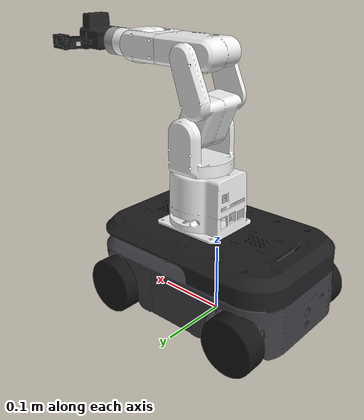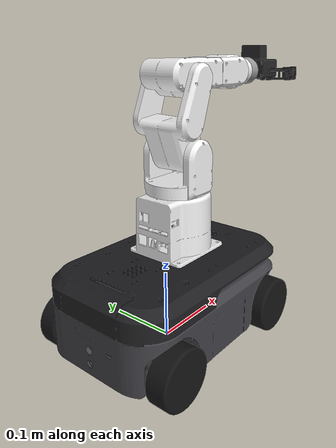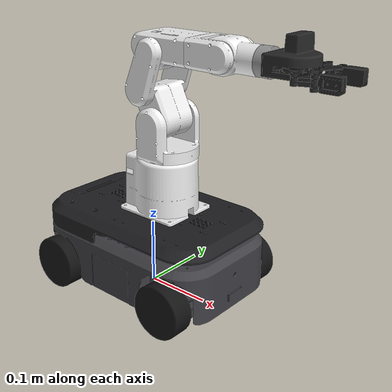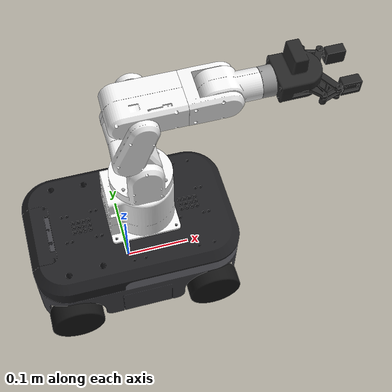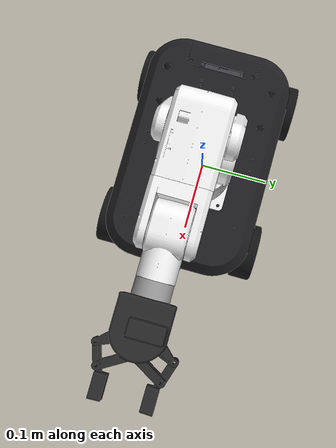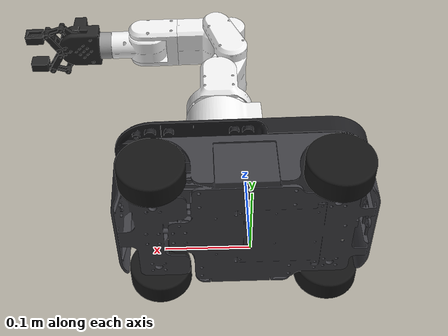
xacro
<?xml version="1.0"?>
<robot xmlns:xacro="http://ros.org/wiki/xacro" name="myagv_mecharm">

  <xacro:arg name="namespace" default=""/>
  <xacro:property name="namespace" value="$(arg namespace)"/>

  <xacro:arg name="simulation_controllers" default=""/>
  <xacro:property name="simulation_controllers" value="$(arg simulation_controllers)"/>

  <xacro:include filename="$(find custom_robots)/models/myagv_mecharm/myagv_mecharm_common.urdf.xacro"/>

  <xacro:myagv_mecharm namespace="${namespace}" simulation_controllers="${simulation_controllers}"/>

</robot>

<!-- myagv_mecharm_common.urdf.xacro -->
<robot xmlns:xacro="http://ros.org/wiki/xacro">

  <xacro:property name="mesh_dir" value="file://$(find custom_robots)/models/myagv_mecharm/meshes"/>
  <xacro:property name="wheel_radius" value="0.04"/>
  <xacro:property name="plate_top" value="0.1322"/>
  <xacro:property name="arm_x" value="0.03"/>
  <xacro:property name="arm_effort" value="10.0"/>
  <xacro:property name="arm_velocity" value="2.8"/>
  <xacro:property name="gripper_effort" value="2.0"/>

  <!-- Arm folded over the base for driving and used as the SRDF home state -->
  <xacro:property name="home_j1" value="0.0"/>
  <xacro:property name="home_j2" value="-0.1"/>
  <xacro:property name="home_j3" value="0.2"/>
  <xacro:property name="home_j4" value="0.0"/>
  <xacro:property name="home_j5" value="1.5"/>
  <xacro:property name="home_j6" value="0.0"/>

  <xacro:include filename="$(find custom_robots)/models/myagv_mecharm/myagv_mecharm_gz.urdf.xacro"/>

  <material name="myagv_grey">
    <color rgba="0.25 0.25 0.27 1"/>
  </material>
  <material name="myagv_plate">
    <color rgba="0.12 0.12 0.13 1"/>
  </material>
  <material name="myagv_wheel">
    <color rgba="0.08 0.08 0.08 1"/>
  </material>
  <material name="arm_white">
    <color rgba="0.95 0.95 0.95 1"/>
  </material>
  <material name="arm_grey">
    <color rgba="0.6 0.6 0.6 1"/>
  </material>
  <material name="gripper_black">
    <color rgba="0.15 0.15 0.15 1"/>
  </material>

  <!-- Link with a mesh visual and a box collision fitted to that mesh -->
  <xacro:macro name="mesh_link" params="name mesh material vxyz vrpy cxyz csize mass ixx iyy izz dir:=${mesh_dir}">
    <link name="${name}">
      <inertial>
        <origin xyz="${cxyz}"/>
        <mass value="${mass}"/>
        <inertia ixx="${ixx}" ixy="0" ixz="0" iyy="${iyy}" iyz="0" izz="${izz}"/>
      </inertial>
      <visual>
        <origin xyz="${vxyz}" rpy="${vrpy}"/>
        <geometry>
          <mesh filename="${dir}/${mesh}.stl"/>
        </geometry>
        <material name="${material}"/>
      </visual>
      <collision>
        <origin xyz="${cxyz}"/>
        <geometry>
          <box size="${csize}"/>
        </geometry>
      </collision>
    </link>
  </xacro:macro>

  <!-- Passive mecanum wheels that roll on the floor while VelocityControl drives the base -->
  <xacro:macro name="mecanum_wheel" params="name xyz">
    <link name="${name}_link">
      <inertial>
        <mass value="0.1"/>
        <inertia ixx="4.8e-05" ixy="0" ixz="0" iyy="8.0e-05" iyz="0" izz="4.8e-05"/>
      </inertial>
      <visual>
        <geometry>
          <mesh filename="${mesh_dir}/myagv_${name}.stl"/>
        </geometry>
        <material name="myagv_wheel"/>
      </visual>
      <collision>
        <geometry>
          <sphere radius="${wheel_radius}"/>
        </geometry>
      </collision>
    </link>
    <joint name="${name}_joint" type="continuous">
      <parent link="base_link"/>
      <child link="${name}_link"/>
      <origin xyz="${xyz}"/>
      <axis xyz="0 1 0"/>
      <dynamics damping="0.001" friction="0.0"/>
    </joint>
    <xacro:rolling_wheel link="${name}_link"/>
    <xacro:hidden_from_laser link="${name}_link"/>
  </xacro:macro>

  <xacro:macro name="state_only" params="name">
    <joint name="${name}">
      <state_interface name="position"/>
      <state_interface name="velocity"/>
    </joint>
  </xacro:macro>

  <xacro:macro name="arm_joint_control" params="name lower upper initial">
    <joint name="${name}">
      <command_interface name="position">
        <param name="min">${lower}</param>
        <param name="max">${upper}</param>
      </command_interface>
      <state_interface name="position">
        <param name="initial_value">${initial}</param>
      </state_interface>
      <state_interface name="velocity"/>
    </joint>
  </xacro:macro>

  <!-- Humble gz_ros2_control only drives a mimic joint through these params -->
  <xacro:macro name="mimic_joint_control" params="name multiplier">
    <joint name="${name}">
      <param name="mimic">gripper_base_to_gripper_left3</param>
      <param name="multiplier">${multiplier}</param>
      <state_interface name="position"/>
      <state_interface name="velocity"/>
    </joint>
  </xacro:macro>

  <xacro:macro name="myagv_mecharm" params="namespace simulation_controllers">

    <!-- myAGV 2023 base -->
    <link name="base_footprint"/>

    <link name="base_link">
      <inertial>
        <origin xyz="0.007 -0.004 0.07"/>
        <mass value="3.2"/>
        <inertia ixx="0.0143" ixy="0" ixz="0" iyy="0.0296" iyz="0" izz="0.0368"/>
      </inertial>
      <visual>
        <geometry>
          <mesh filename="${mesh_dir}/myagv_body.stl"/>
        </geometry>
        <material name="myagv_grey"/>
      </visual>
      <visual>
        <geometry>
          <mesh filename="${mesh_dir}/myagv_top.stl"/>
        </geometry>
        <material name="myagv_plate"/>
      </visual>
      <!-- Box fitted to the body and top plate meshes -->
      <collision>
        <origin xyz="0.007 -0.0042 0.0753"/>
        <geometry>
          <box size="0.313 0.2 0.1138"/>
        </geometry>
      </collision>
    </link>

    <xacro:hidden_from_laser link="base_link"/>

    <joint name="base_footprint_joint" type="fixed">
      <parent link="base_footprint"/>
      <child link="base_link"/>
      <origin xyz="0 0 0"/>
    </joint>

    <xacro:mecanum_wheel name="wheel_front_left" xyz="0.1124 0.0946 ${wheel_radius}"/>
    <xacro:mecanum_wheel name="wheel_front_right" xyz="0.1124 -0.1029 ${wheel_radius}"/>
    <xacro:mecanum_wheel name="wheel_back_left" xyz="-0.1014 0.0946 ${wheel_radius}"/>
    <xacro:mecanum_wheel name="wheel_back_right" xyz="-0.1014 -0.1029 ${wheel_radius}"/>

    <!-- Sensor frames from the myAGV bringup -->
    <link name="laser_frame"/>
    <joint name="laser_joint" type="fixed">
      <parent link="base_link"/>
      <child link="laser_frame"/>
      <origin xyz="0.065 0 0.08" rpy="0 0 ${pi}"/>
    </joint>

    <link name="camera_link"/>
    <joint name="camera_joint" type="fixed">
      <parent link="base_link"/>
      <child link="camera_link"/>
      <origin xyz="0.13 0 0.131" rpy="0 0 0"/>
    </joint>

    <!-- mechArm 270 Pi with the link and joint names of mycobot_description -->
    <link name="g_base"/>
    <joint name="g_base_joint" type="fixed">
      <parent link="base_link"/>
      <child link="g_base"/>
      <origin xyz="${arm_x} 0 ${plate_top}"/>
    </joint>

    <xacro:mesh_link name="base" mesh="mecharm_base" material="arm_white"
      vxyz="0 0 0" vrpy="0 0 ${-pi}"
      cxyz="-0.0050 0 0.0465" csize="0.1029 0.0929 0.0931"
      mass="0.30" ixx="4.326e-04" iyy="4.816e-04" izz="4.808e-04"/>
    <xacro:mesh_link name="link1" mesh="mecharm_link1" material="arm_white"
      vxyz="0 0 -0.132" vrpy="0 0 0"
      cxyz="-0.0005 0.0021 0.0160" csize="0.0900 0.0900 0.0911"
      mass="0.15" ixx="2.050e-04" iyy="2.050e-04" izz="2.025e-04"/>
    <xacro:mesh_link name="link2" mesh="mecharm_link2" material="arm_white"
      vxyz="-0.005 0.21 0.002" vrpy="1.5708 ${-pi} 0"
      cxyz="-0.0090 -0.0482 0.0018" csize="0.0679 0.1448 0.0920"
      mass="0.15" ixx="3.680e-04" iyy="1.635e-04" izz="3.199e-04"/>
    <xacro:mesh_link name="link3" mesh="mecharm_link3" material="arm_white"
      vxyz="-0.09 0.306 0.005" vrpy="1.5708 ${pi} 0"
      cxyz="0.0122 -0.0007 0.0015" csize="0.1100 0.0499 0.0728"
      mass="0.12" ixx="7.794e-05" iyy="1.740e-04" izz="1.459e-04"/>
    <xacro:mesh_link name="link4" mesh="mecharm_link4" material="arm_white"
      vxyz="0.009 -0.311 -0.228" vrpy="0 1.5708 1.5708"
      cxyz="-0.0021 -0.0009 -0.0150" csize="0.0640 0.0404 0.0718"
      mass="0.10" ixx="5.659e-05" iyy="7.711e-05" izz="4.775e-05"/>
    <xacro:mesh_link name="link5" mesh="mecharm_link5" material="arm_white"
      vxyz="-0.292 -0.318 -0.007" vrpy="1.5708 0 ${pi}"
      cxyz="0.0092 0 0.0010" csize="0.0844 0.0476 0.0480"
      mass="0.08" ixx="3.046e-05" iyy="6.288e-05" izz="6.261e-05"/>
    <xacro:mesh_link name="link6" mesh="mecharm_link6" material="arm_grey"
      vxyz="-0.1645 0.0536 -0.211" vrpy="0 1.5708 0"
      cxyz="-0.0010 0.0006 -0.0038" csize="0.0400 0.0400 0.0175"
      mass="0.03" ixx="4.760e-06" iyy="4.756e-06" izz="7.989e-06"/>

    <joint name="g_base_to_base" type="fixed">
      <parent link="g_base"/>
      <child link="base"/>
      <origin xyz="0 0 0" rpy="0 0 0"/>
    </joint>

    <joint name="joint1_to_base" type="revolute">
      <parent link="base"/>
      <child link="link1"/>
      <origin xyz="0 0 0.1" rpy="0 0 0"/>
      <axis xyz="0 0 1"/>
      <limit effort="${arm_effort}" lower="-2.7925" upper="2.7925" velocity="${arm_velocity}"/>
    </joint>

    <joint name="joint2_to_joint1" type="revolute">
      <parent link="link1"/>
      <child link="link2"/>
      <origin xyz="0 0 0.038" rpy="-1.5708 0 0"/>
      <axis xyz="0 0 1"/>
      <limit effort="${arm_effort}" lower="-1.3089" upper="2.0943" velocity="${arm_velocity}"/>
    </joint>

    <joint name="joint3_to_joint2" type="revolute">
      <parent link="link2"/>
      <child link="link3"/>
      <origin xyz="0 -0.1 0" rpy="0 0 0"/>
      <axis xyz="0 0 1"/>
      <limit effort="${arm_effort}" lower="-3.0543" upper="1.1344" velocity="${arm_velocity}"/>
    </joint>

    <joint name="joint4_to_joint3" type="revolute">
      <parent link="link3"/>
      <child link="link4"/>
      <origin xyz="0.108 -0.005 -0.001" rpy="0 1.5708 0"/>
      <axis xyz="0 0 1"/>
      <limit effort="${arm_effort}" lower="-2.7052" upper="2.7052" velocity="${arm_velocity}"/>
    </joint>

    <joint name="joint5_to_joint4" type="revolute">
      <parent link="link4"/>
      <child link="link5"/>
      <origin xyz="-0.001 0 0" rpy="0 -1.5708 0"/>
      <axis xyz="0 0 1"/>
      <limit effort="${arm_effort}" lower="-2.0071" upper="2.0071" velocity="${arm_velocity}"/>
    </joint>

    <joint name="joint6_to_joint5" type="revolute">
      <parent link="link5"/>
      <child link="link6"/>
      <origin xyz="0.06 0 0" rpy="0 1.5708 0"/>
      <axis xyz="0 0 1"/>
      <limit effort="${arm_effort}" lower="-3.14" upper="3.14" velocity="${arm_velocity}"/>
    </joint>

    <!-- Adaptive gripper where one joint drives the whole linkage -->
    <xacro:mesh_link name="gripper_base" mesh="gripper_base" material="gripper_black"
      vxyz="0 0 -0.012" vrpy="0 0 0"
      cxyz="0 -0.0012 0.0123" csize="0.0580 0.0622 0.0509"
      mass="0.06" ixx="3.232e-05" iyy="2.977e-05" izz="3.618e-05"/>
    <xacro:mesh_link name="gripper_left1" mesh="gripper_left1" material="gripper_black"
      vxyz="0.039 -0.0133 -0.012" vrpy="0 0 0"
      cxyz="0.0065 0.0241 -0.0082" csize="0.0244 0.0582 0.0207"
      mass="0.01" ixx="3.178e-06" iyy="8.535e-07" izz="3.320e-06"/>
    <xacro:mesh_link name="gripper_left2" mesh="gripper_left2" material="gripper_black"
      vxyz="0.005 -0.0195 -0.012" vrpy="0 0 0"
      cxyz="-0.0145 0.0075 -0.0082" csize="0.0359 0.0243 0.0200"
      mass="0.01" ixx="8.251e-07" iyy="1.409e-06" izz="1.567e-06"/>
    <xacro:mesh_link name="gripper_left3" mesh="gripper_left3" material="gripper_black"
      vxyz="0.012 0.0025 -0.012" vrpy="0 0 0"
      cxyz="-0.0097 0.0025 -0.0007" csize="0.0450 0.0335 0.0050"
      mass="0.01" ixx="9.578e-07" iyy="1.711e-06" izz="2.627e-06"/>
    <xacro:mesh_link name="gripper_right1" mesh="gripper_right1" material="gripper_black"
      vxyz="-0.039 -0.0133 -0.012" vrpy="0 0 0"
      cxyz="-0.0078 0.0245 -0.0082" csize="0.0244 0.0582 0.0207"
      mass="0.01" ixx="3.178e-06" iyy="8.535e-07" izz="3.320e-06"/>
    <xacro:mesh_link name="gripper_right2" mesh="gripper_right2" material="gripper_black"
      vxyz="-0.005 -0.0195 -0.012" vrpy="0 0 0"
      cxyz="0.0134 0.0077 -0.0082" csize="0.0357 0.0247 0.0200"
      mass="0.01" ixx="8.407e-07" iyy="1.397e-06" izz="1.571e-06"/>
    <xacro:mesh_link name="gripper_right3" mesh="gripper_right3" material="gripper_black"
      vxyz="-0.012 0.0025 -0.012" vrpy="0 0 0"
      cxyz="0.0085 0.0027 -0.0007" csize="0.0450 0.0339 0.0050"
      mass="0.01" ixx="9.801e-07" iyy="1.706e-06" izz="2.645e-06"/>

    <joint name="joint6output_to_gripper_base" type="fixed">
      <parent link="link6"/>
      <child link="gripper_base"/>
      <origin xyz="0 0 0.038" rpy="1.579 0 0"/>
    </joint>

    <joint name="gripper_base_to_gripper_left3" type="revolute">
      <parent link="gripper_base"/>
      <child link="gripper_left3"/>
      <origin xyz="-0.012 0.005 0" rpy="0 0 0"/>
      <axis xyz="0 0 1"/>
      <limit effort="${gripper_effort}" lower="-0.74" upper="0.15" velocity="1.5"/>
    </joint>

    <!-- Mimic limits follow the driving joint range times the multiplier -->
    <joint name="gripper_base_to_gripper_left2" type="revolute">
      <parent link="gripper_base"/>
      <child link="gripper_left2"/>
      <origin xyz="-0.005 0.027 0" rpy="0 0 0"/>
      <axis xyz="0 0 1"/>
      <limit effort="${gripper_effort}" lower="-0.79" upper="0.2" velocity="1.5"/>
      <mimic joint="gripper_base_to_gripper_left3" multiplier="1.0" offset="0"/>
    </joint>

    <joint name="gripper_left3_to_gripper_left1" type="revolute">
      <parent link="gripper_left3"/>
      <child link="gripper_left1"/>
      <origin xyz="-0.027 0.016 0" rpy="0 0 0"/>
      <axis xyz="0 0 1"/>
      <limit effort="${gripper_effort}" lower="-0.2" upper="0.79" velocity="1.5"/>
      <mimic joint="gripper_base_to_gripper_left3" multiplier="-1.0" offset="0"/>
    </joint>

    <joint name="gripper_base_to_gripper_right3" type="revolute">
      <parent link="gripper_base"/>
      <child link="gripper_right3"/>
      <origin xyz="0.012 0.005 0" rpy="0 0 0"/>
      <axis xyz="0 0 1"/>
      <limit effort="${gripper_effort}" lower="-0.2" upper="0.79" velocity="1.5"/>
      <mimic joint="gripper_base_to_gripper_left3" multiplier="-1.0" offset="0"/>
    </joint>

    <joint name="gripper_base_to_gripper_right2" type="revolute">
      <parent link="gripper_base"/>
      <child link="gripper_right2"/>
      <origin xyz="0.005 0.027 0" rpy="0 0 0"/>
      <axis xyz="0 0 1"/>
      <limit effort="${gripper_effort}" lower="-0.2" upper="0.79" velocity="1.5"/>
      <mimic joint="gripper_base_to_gripper_left3" multiplier="-1.0" offset="0"/>
    </joint>

    <joint name="gripper_right3_to_gripper_right1" type="revolute">
      <parent link="gripper_right3"/>
      <child link="gripper_right1"/>
      <origin xyz="0.027 0.016 0" rpy="0 0 0"/>
      <axis xyz="0 0 1"/>
      <limit effort="${gripper_effort}" lower="-0.79" upper="0.2" velocity="1.5"/>
      <mimic joint="gripper_base_to_gripper_left3" multiplier="1.0" offset="0"/>
    </joint>

    <!-- Point between the finger pads used as the arm tip with z pointing out of the gripper -->
    <link name="gripper_tcp"/>
    <joint name="gripper_tcp_joint" type="fixed">
      <parent link="gripper_base"/>
      <child link="gripper_tcp"/>
      <origin xyz="0 0.07 -0.0082" rpy="-1.5708 0 0"/>
    </joint>

    <xacro:velocity namespace="${namespace}"/>
    <xacro:odom namespace="${namespace}"/>
    <xacro:gpu_laser link="laser_frame" namespace="${namespace}"/>
    <xacro:camera link="camera_link" namespace="${namespace}"/>
    <xacro:suction_contact link="gripper_left1"/>

    <ros2_control name="mecharm" type="system">
      <hardware>
        <plugin>gz_ros2_control/GazeboSimSystem</plugin>
      </hardware>
      <xacro:arm_joint_control name="joint1_to_base" lower="-2.7925" upper="2.7925" initial="${home_j1}"/>
      <xacro:arm_joint_control name="joint2_to_joint1" lower="-1.3089" upper="2.0943" initial="${home_j2}"/>
      <xacro:arm_joint_control name="joint3_to_joint2" lower="-3.0543" upper="1.1344" initial="${home_j3}"/>
      <xacro:arm_joint_control name="joint4_to_joint3" lower="-2.7052" upper="2.7052" initial="${home_j4}"/>
      <xacro:arm_joint_control name="joint5_to_joint4" lower="-2.0071" upper="2.0071" initial="${home_j5}"/>
      <xacro:arm_joint_control name="joint6_to_joint5" lower="-3.14" upper="3.14" initial="${home_j6}"/>
      <xacro:arm_joint_control name="gripper_base_to_gripper_left3" lower="-0.74" upper="0.15" initial="0.0"/>
      <xacro:mimic_joint_control name="gripper_base_to_gripper_left2" multiplier="1.0"/>
      <xacro:mimic_joint_control name="gripper_left3_to_gripper_left1" multiplier="-1.0"/>
      <xacro:mimic_joint_control name="gripper_base_to_gripper_right3" multiplier="-1.0"/>
      <xacro:mimic_joint_control name="gripper_base_to_gripper_right2" multiplier="-1.0"/>
      <xacro:mimic_joint_control name="gripper_right3_to_gripper_right1" multiplier="1.0"/>
    </ros2_control>

    <!-- Wheels are state only because MoveIt waits for every joint of the URDF -->
    <ros2_control name="myagv_wheels" type="system">
      <hardware>
        <plugin>gz_ros2_control/GazeboSimSystem</plugin>
      </hardware>
      <xacro:state_only name="wheel_front_left_joint"/>
      <xacro:state_only name="wheel_front_right_joint"/>
      <xacro:state_only name="wheel_back_left_joint"/>
      <xacro:state_only name="wheel_back_right_joint"/>
    </ros2_control>

    <xacro:ros2_control_plugin namespace="${namespace}" simulation_controllers="${simulation_controllers}"/>

  </xacro:macro>

</robot>
